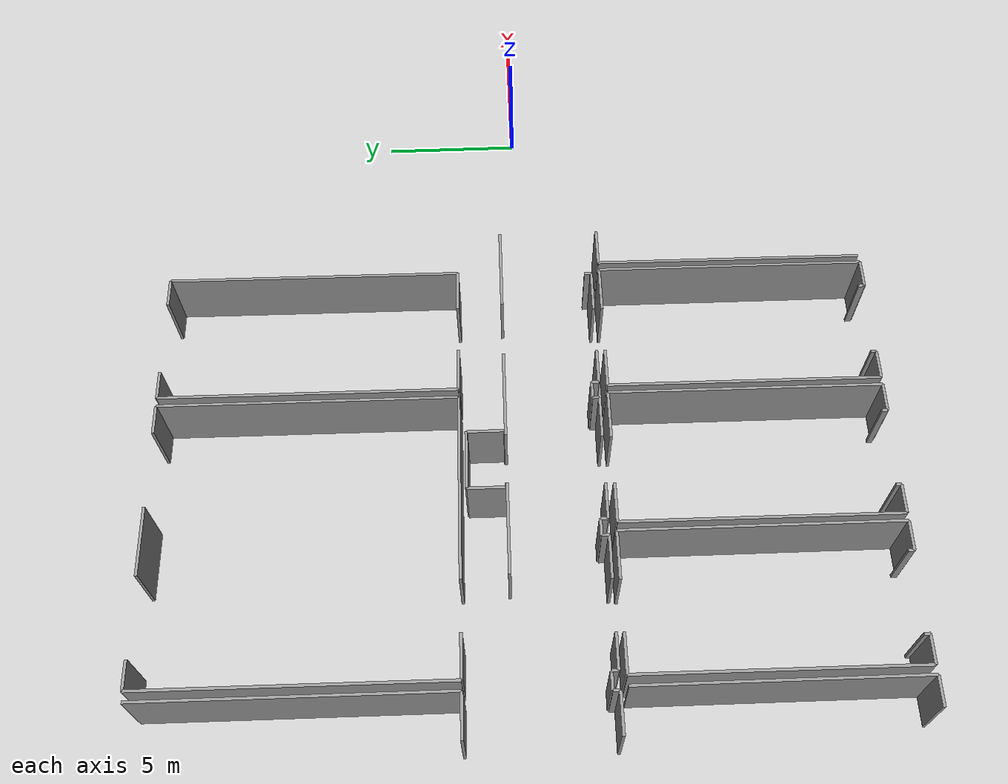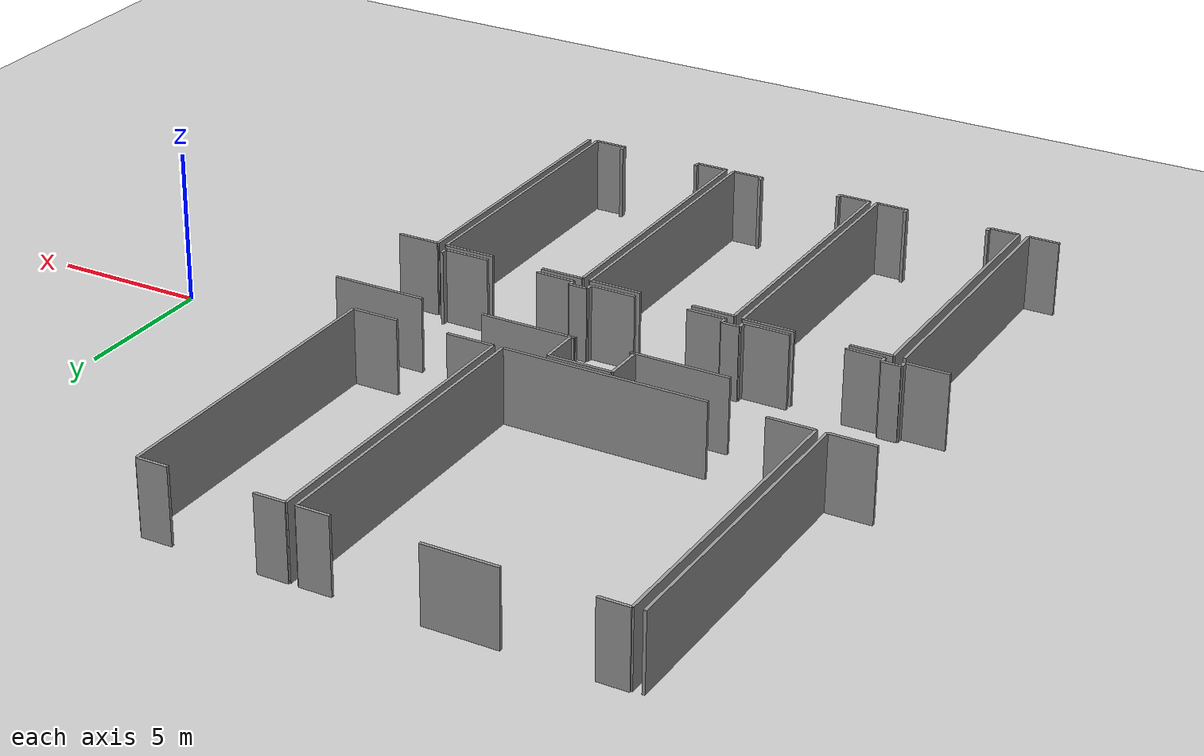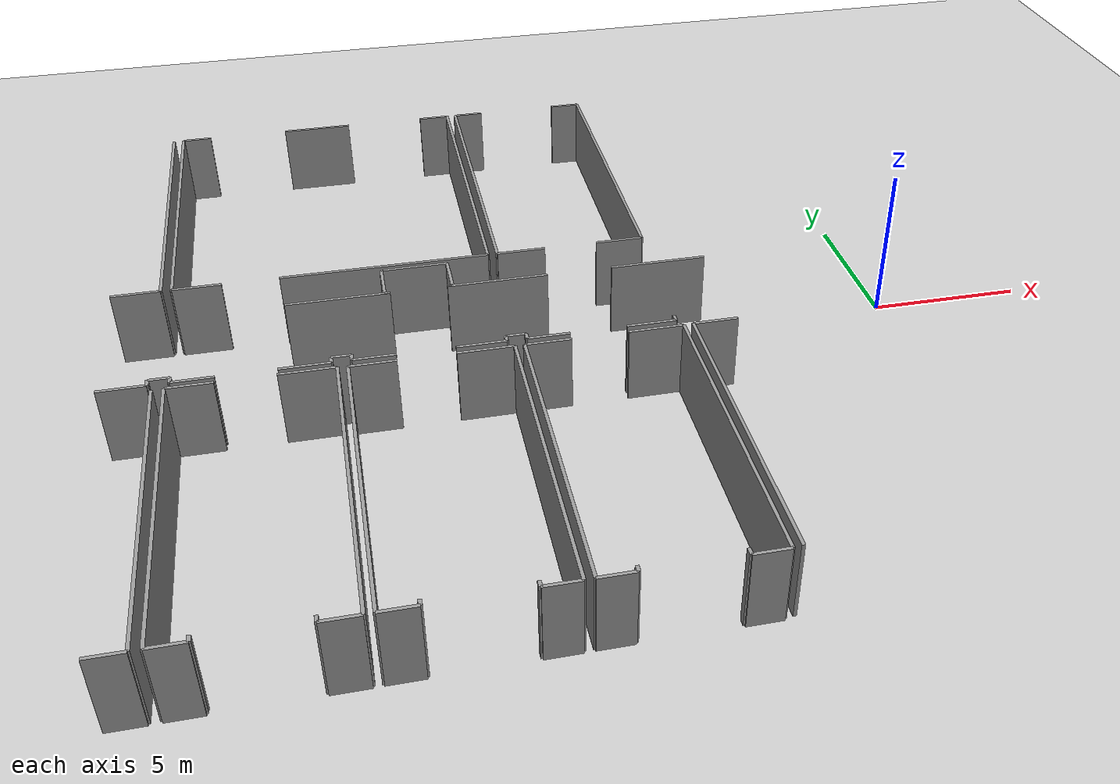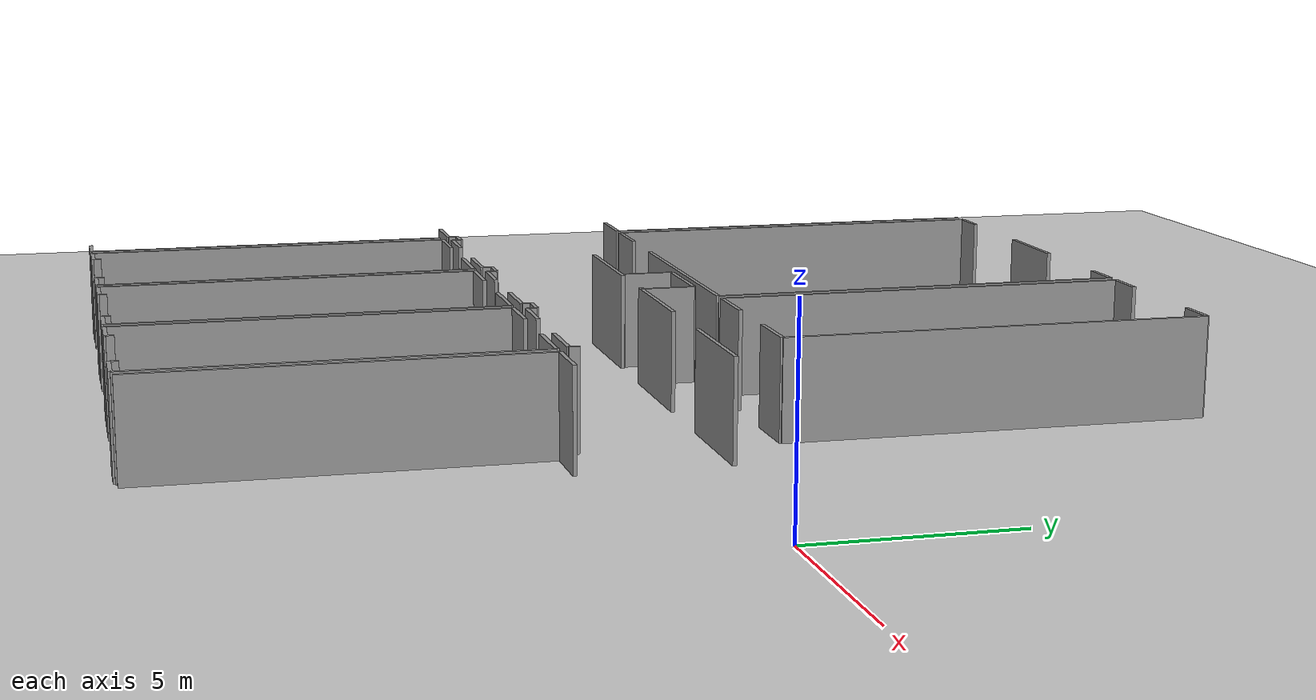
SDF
<sdf version="1.6">
 <world name="default">
  <model name="ground_plane">
   <static>1</static>
   <link name="link">
    <collision name="collision">
     <geometry><plane><normal>0 0 1</normal><size>100 100</size></plane></geometry>
     <surface><friction><ode><mu>100</mu><mu2>50</mu2></ode></friction></surface>
    </collision>
    <visual name="visual">
     <cast_shadows>0</cast_shadows>
     <geometry><plane><normal>0 0 1</normal><size>100 100</size></plane></geometry>
     <material>
      <script><uri>file://media/materials/scripts/gazebo.material</uri><name>Gazebo/Grey</name></script>
     </material>
    </visual>
   </link>
  </model>
  <model name="0510030967_A-40">
   <static>1</static>
   <link name="Wall_0">
    <collision name="Wall_0_Collision">
     <geometry><box><size>1.53389109653 0.1 2.5</size></box></geometry>
     <pose>0.766945548263 0 1.25 0 0 0</pose>
    </collision>
    <visual name="Wall_0_Visual">
     <pose>0.766945548263 0 1.25 0 0 0</pose>
     <geometry><box><size>1.53389109653 0.1 2.5</size></box></geometry>
     <material>
      <script><uri>file://media/materials/scripts/gazebo.material</uri><name>Gazebo/Grey</name></script>
      <ambient>1 1 1 1</ambient>
     </material>
    </visual>
    <pose>15.2854621859 -10.6718549646 0 0 0 3.14159265359</pose>
   </link>
   <link name="Wall_7">
    <collision name="Wall_7_Collision">
     <geometry><box><size>10.6306016114 0.1 2.5</size></box></geometry>
     <pose>5.31530080572 0 1.25 0 0 0</pose>
    </collision>
    <visual name="Wall_7_Visual">
     <pose>5.31530080572 0 1.25 0 0 0</pose>
     <geometry><box><size>10.6306016114 0.1 2.5</size></box></geometry>
     <material>
      <script><uri>file://media/materials/scripts/gazebo.material</uri><name>Gazebo/Grey</name></script>
      <ambient>1 1 1 1</ambient>
     </material>
    </visual>
    <pose>15.2727665139 -0.0412609341475 0 0 0 -1.56960206936</pose>
   </link>
   <link name="Wall_42">
    <collision name="Wall_42_Collision">
     <geometry><box><size>3.27192859954 0.1 2.5</size></box></geometry>
     <pose>1.63596429977 0 1.25 0 0 0</pose>
    </collision>
    <visual name="Wall_42_Visual">
     <pose>1.63596429977 0 1.25 0 0 0</pose>
     <geometry><box><size>3.27192859954 0.1 2.5</size></box></geometry>
     <material>
      <script><uri>file://media/materials/scripts/gazebo.material</uri><name>Gazebo/Grey</name></script>
      <ambient>1 1 1 1</ambient>
     </material>
    </visual>
    <pose>19.0766437721 -12.2899183668 0 0 0 0.0</pose>
   </link>
   <link name="Wall_43">
    <collision name="Wall_43_Collision">
     <geometry><box><size>3.22051112776 0.1 2.5</size></box></geometry>
     <pose>1.61025556388 0 1.25 0 0 0</pose>
    </collision>
    <visual name="Wall_43_Visual">
     <pose>1.61025556388 0 1.25 0 0 0</pose>
     <geometry><box><size>3.22051112776 0.1 2.5</size></box></geometry>
     <material>
      <script><uri>file://media/materials/scripts/gazebo.material</uri><name>Gazebo/Grey</name></script>
      <ambient>1 1 1 1</ambient>
     </material>
    </visual>
    <pose>24.1571978113 -12.2899183668 0 0 0 0.0</pose>
   </link>
   <link name="Wall_44">
    <collision name="Wall_44_Collision">
     <geometry><box><size>3.1103126944 0.1 2.5</size></box></geometry>
     <pose>1.5551563472 0 1.25 0 0 0</pose>
    </collision>
    <visual name="Wall_44_Visual">
     <pose>1.5551563472 0 1.25 0 0 0</pose>
     <geometry><box><size>3.1103126944 0.1 2.5</size></box></geometry>
     <material>
      <script><uri>file://media/materials/scripts/gazebo.material</uri><name>Gazebo/Grey</name></script>
      <ambient>1 1 1 1</ambient>
     </material>
    </visual>
    <pose>29.4832861478 -12.2899183668 0 0 0 0.0</pose>
   </link>
   <link name="Wall_78">
    <collision name="Wall_78_Collision">
     <geometry><box><size>0.255309964833 0.1 2.5</size></box></geometry>
     <pose>0.127654982416 0 1.25 0 0 0</pose>
    </collision>
    <visual name="Wall_78_Visual">
     <pose>0.127654982416 0 1.25 0 0 0</pose>
     <geometry><box><size>0.255309964833 0.1 2.5</size></box></geometry>
     <material>
      <script><uri>file://media/materials/scripts/gazebo.material</uri><name>Gazebo/Grey</name></script>
      <ambient>1 1 1 1</ambient>
     </material>
    </visual>
    <pose>30.7308898397 -15.3966762731 0 0 0 -1.57079632679</pose>
   </link>
   <link name="Wall_79">
    <collision name="Wall_79_Collision">
     <geometry><box><size>1.54011197583 0.1 2.5</size></box></geometry>
     <pose>0.770055987914 0 1.25 0 0 0</pose>
    </collision>
    <visual name="Wall_79_Visual">
     <pose>0.770055987914 0 1.25 0 0 0</pose>
     <geometry><box><size>1.54011197583 0.1 2.5</size></box></geometry>
     <material>
      <script><uri>file://media/materials/scripts/gazebo.material</uri><name>Gazebo/Grey</name></script>
      <ambient>1 1 1 1</ambient>
     </material>
    </visual>
    <pose>30.7308898397 -15.6519862379 0 0 0 3.14159265359</pose>
   </link>
   <link name="Wall_80">
    <collision name="Wall_80_Collision">
     <geometry><box><size>1.30257595186 0.1 2.5</size></box></geometry>
     <pose>0.651287975929 0 1.25 0 0 0</pose>
    </collision>
    <visual name="Wall_80_Visual">
     <pose>0.651287975929 0 1.25 0 0 0</pose>
     <geometry><box><size>1.30257595186 0.1 2.5</size></box></geometry>
     <material>
      <script><uri>file://media/materials/scripts/gazebo.material</uri><name>Gazebo/Grey</name></script>
      <ambient>1 1 1 1</ambient>
     </material>
    </visual>
    <pose>27.4336968527 -15.6519862379 0 0 0 3.14159265359</pose>
   </link>
   <link name="Wall_81">
    <collision name="Wall_81_Collision">
     <geometry><box><size>0.25162821994 0.1 2.5</size></box></geometry>
     <pose>0.12581410997 0 1.25 0 0 0</pose>
    </collision>
    <visual name="Wall_81_Visual">
     <pose>0.12581410997 0 1.25 0 0 0</pose>
     <geometry><box><size>0.25162821994 0.1 2.5</size></box></geometry>
     <material>
      <script><uri>file://media/materials/scripts/gazebo.material</uri><name>Gazebo/Grey</name></script>
      <ambient>1 1 1 1</ambient>
     </material>
    </visual>
    <pose>26.1311209009 -15.6519862379 0 0 0 1.57079632679</pose>
   </link>
   <link name="Wall_82">
    <collision name="Wall_82_Collision">
     <geometry><box><size>0.615867050922 0.1 2.5</size></box></geometry>
     <pose>0.307933525461 0 1.25 0 0 0</pose>
    </collision>
    <visual name="Wall_82_Visual">
     <pose>0.307933525461 0 1.25 0 0 0</pose>
     <geometry><box><size>0.615867050922 0.1 2.5</size></box></geometry>
     <material>
      <script><uri>file://media/materials/scripts/gazebo.material</uri><name>Gazebo/Grey</name></script>
      <ambient>1 1 1 1</ambient>
     </material>
    </visual>
    <pose>26.1311209009 -15.400358018 0 0 0 3.14159265359</pose>
   </link>
   <link name="Wall_83">
    <collision name="Wall_83_Collision">
     <geometry><box><size>0.245915167519 0.1 2.5</size></box></geometry>
     <pose>0.12295758376 0 1.25 0 0 0</pose>
    </collision>
    <visual name="Wall_83_Visual">
     <pose>0.12295758376 0 1.25 0 0 0</pose>
     <geometry><box><size>0.245915167519 0.1 2.5</size></box></geometry>
     <material>
      <script><uri>file://media/materials/scripts/gazebo.material</uri><name>Gazebo/Grey</name></script>
      <ambient>1 1 1 1</ambient>
     </material>
    </visual>
    <pose>25.51525385 -15.400358018 0 0 0 -1.57079632679</pose>
   </link>
   <link name="Wall_84">
    <collision name="Wall_84_Collision">
     <geometry><box><size>1.52589282314 0.1 2.5</size></box></geometry>
     <pose>0.762946411568 0 1.25 0 0 0</pose>
    </collision>
    <visual name="Wall_84_Visual">
     <pose>0.762946411568 0 1.25 0 0 0</pose>
     <geometry><box><size>1.52589282314 0.1 2.5</size></box></geometry>
     <material>
      <script><uri>file://media/materials/scripts/gazebo.material</uri><name>Gazebo/Grey</name></script>
      <ambient>1 1 1 1</ambient>
     </material>
    </visual>
    <pose>25.51525385 -15.6462731855 0 0 0 3.14159265359</pose>
   </link>
   <link name="Wall_85">
    <collision name="Wall_85_Collision">
     <geometry><box><size>1.28632549164 0.1 2.5</size></box></geometry>
     <pose>0.64316274582 0 1.25 0 0 0</pose>
    </collision>
    <visual name="Wall_85_Visual">
     <pose>0.64316274582 0 1.25 0 0 0</pose>
     <geometry><box><size>1.28632549164 0.1 2.5</size></box></geometry>
     <material>
      <script><uri>file://media/materials/scripts/gazebo.material</uri><name>Gazebo/Grey</name></script>
      <ambient>1 1 1 1</ambient>
     </material>
    </visual>
    <pose>22.216283469 -15.6462731855 0 0 0 3.14159265359</pose>
   </link>
   <link name="Wall_86">
    <collision name="Wall_86_Collision">
     <geometry><box><size>0.255056051392 0.1 2.5</size></box></geometry>
     <pose>0.127528025696 0 1.25 0 0 0</pose>
    </collision>
    <visual name="Wall_86_Visual">
     <pose>0.127528025696 0 1.25 0 0 0</pose>
     <geometry><box><size>0.255056051392 0.1 2.5</size></box></geometry>
     <material>
      <script><uri>file://media/materials/scripts/gazebo.material</uri><name>Gazebo/Grey</name></script>
      <ambient>1 1 1 1</ambient>
     </material>
    </visual>
    <pose>20.9299579773 -15.6462731855 0 0 0 1.57079632679</pose>
   </link>
   <link name="Wall_87">
    <collision name="Wall_87_Collision">
     <geometry><box><size>0.595173105488 0.1 2.5</size></box></geometry>
     <pose>0.297586552744 0 1.25 0 0 0</pose>
    </collision>
    <visual name="Wall_87_Visual">
     <pose>0.297586552744 0 1.25 0 0 0</pose>
     <geometry><box><size>0.595173105488 0.1 2.5</size></box></geometry>
     <material>
      <script><uri>file://media/materials/scripts/gazebo.material</uri><name>Gazebo/Grey</name></script>
      <ambient>1 1 1 1</ambient>
     </material>
    </visual>
    <pose>20.9299579773 -15.3912171341 0 0 0 3.14159265359</pose>
   </link>
   <link name="Wall_88">
    <collision name="Wall_88_Collision">
     <geometry><box><size>0.259245623167 0.1 2.5</size></box></geometry>
     <pose>0.129622811584 0 1.25 0 0 0</pose>
    </collision>
    <visual name="Wall_88_Visual">
     <pose>0.129622811584 0 1.25 0 0 0</pose>
     <geometry><box><size>0.259245623167 0.1 2.5</size></box></geometry>
     <material>
      <script><uri>file://media/materials/scripts/gazebo.material</uri><name>Gazebo/Grey</name></script>
      <ambient>1 1 1 1</ambient>
     </material>
    </visual>
    <pose>20.3347848718 -15.3912171341 0 0 0 -1.57079632679</pose>
   </link>
   <link name="Wall_89">
    <collision name="Wall_89_Collision">
     <geometry><box><size>1.52665456346 0.1 2.5</size></box></geometry>
     <pose>0.76332728173 0 1.25 0 0 0</pose>
    </collision>
    <visual name="Wall_89_Visual">
     <pose>0.76332728173 0 1.25 0 0 0</pose>
     <geometry><box><size>1.52665456346 0.1 2.5</size></box></geometry>
     <material>
      <script><uri>file://media/materials/scripts/gazebo.material</uri><name>Gazebo/Grey</name></script>
      <ambient>1 1 1 1</ambient>
     </material>
    </visual>
    <pose>20.3347848718 -15.6504627572 0 0 0 3.14159265359</pose>
   </link>
   <link name="Wall_90">
    <collision name="Wall_90_Collision">
     <geometry><box><size>1.25572892201 0.1 2.5</size></box></geometry>
     <pose>0.627864461005 0 1.25 0 0 0</pose>
    </collision>
    <visual name="Wall_90_Visual">
     <pose>0.627864461005 0 1.25 0 0 0</pose>
     <geometry><box><size>1.25572892201 0.1 2.5</size></box></geometry>
     <material>
      <script><uri>file://media/materials/scripts/gazebo.material</uri><name>Gazebo/Grey</name></script>
      <ambient>1 1 1 1</ambient>
     </material>
    </visual>
    <pose>17.0240075158 -15.6504627572 0 0 0 3.14159265359</pose>
   </link>
   <link name="Wall_91">
    <collision name="Wall_91_Collision">
     <geometry><box><size>0.231949928269 0.1 2.5</size></box></geometry>
     <pose>0.115974964135 0 1.25 0 0 0</pose>
    </collision>
    <visual name="Wall_91_Visual">
     <pose>0.115974964135 0 1.25 0 0 0</pose>
     <geometry><box><size>0.231949928269 0.1 2.5</size></box></geometry>
     <material>
      <script><uri>file://media/materials/scripts/gazebo.material</uri><name>Gazebo/Grey</name></script>
      <ambient>1 1 1 1</ambient>
     </material>
    </visual>
    <pose>15.7682785938 -15.6504627572 0 0 0 1.57079632679</pose>
   </link>
   <link name="Wall_92">
    <collision name="Wall_92_Collision">
     <geometry><box><size>0.624246194472 0.1 2.5</size></box></geometry>
     <pose>0.312123097236 0 1.25 0 0 0</pose>
    </collision>
    <visual name="Wall_92_Visual">
     <pose>0.312123097236 0 1.25 0 0 0</pose>
     <geometry><box><size>0.624246194472 0.1 2.5</size></box></geometry>
     <material>
      <script><uri>file://media/materials/scripts/gazebo.material</uri><name>Gazebo/Grey</name></script>
      <ambient>1 1 1 1</ambient>
     </material>
    </visual>
    <pose>15.7682785938 -15.418512829 0 0 0 3.14159265359</pose>
   </link>
   <link name="Wall_93">
    <collision name="Wall_93_Collision">
     <geometry><box><size>0.246803864563 0.1 2.5</size></box></geometry>
     <pose>0.123401932281 0 1.25 0 0 0</pose>
    </collision>
    <visual name="Wall_93_Visual">
     <pose>0.123401932281 0 1.25 0 0 0</pose>
     <geometry><box><size>0.246803864563 0.1 2.5</size></box></geometry>
     <material>
      <script><uri>file://media/materials/scripts/gazebo.material</uri><name>Gazebo/Grey</name></script>
      <ambient>1 1 1 1</ambient>
     </material>
    </visual>
    <pose>15.1440323994 -15.418512829 0 0 0 -1.57079632679</pose>
   </link>
   <link name="Wall_94">
    <collision name="Wall_94_Collision">
     <geometry><box><size>1.42267700941 0.1 2.5</size></box></geometry>
     <pose>0.711338504704 0 1.25 0 0 0</pose>
    </collision>
    <visual name="Wall_94_Visual">
     <pose>0.711338504704 0 1.25 0 0 0</pose>
     <geometry><box><size>1.42267700941 0.1 2.5</size></box></geometry>
     <material>
      <script><uri>file://media/materials/scripts/gazebo.material</uri><name>Gazebo/Grey</name></script>
      <ambient>1 1 1 1</ambient>
     </material>
    </visual>
    <pose>15.1440323994 -15.6653166935 0 0 0 3.14159265359</pose>
   </link>
   <link name="Wall_115">
    <collision name="Wall_115_Collision">
     <geometry><box><size>1.02669899831 0.1 2.5</size></box></geometry>
     <pose>0.513349499156 0 1.25 0 0 0</pose>
    </collision>
    <visual name="Wall_115_Visual">
     <pose>0.513349499156 0 1.25 0 0 0</pose>
     <geometry><box><size>1.02669899831 0.1 2.5</size></box></geometry>
     <material>
      <script><uri>file://media/materials/scripts/gazebo.material</uri><name>Gazebo/Grey</name></script>
      <ambient>1 1 1 1</ambient>
     </material>
    </visual>
    <pose>15.3010778626 -25.7225741745 0 0 0 3.14159265359</pose>
   </link>
   <link name="Wall_122">
    <collision name="Wall_122_Collision">
     <geometry><box><size>9.78878314326 0.1 2.5</size></box></geometry>
     <pose>4.89439157163 0 1.25 0 0 0</pose>
    </collision>
    <visual name="Wall_122_Visual">
     <pose>4.89439157163 0 1.25 0 0 0</pose>
     <geometry><box><size>9.78878314326 0.1 2.5</size></box></geometry>
     <material>
      <script><uri>file://media/materials/scripts/gazebo.material</uri><name>Gazebo/Grey</name></script>
      <ambient>1 1 1 1</ambient>
     </material>
    </visual>
    <pose>15.2734012975 -15.9338301573 0 0 0 -1.56796894759</pose>
   </link>
   <link name="Wall_123">
    <collision name="Wall_123_Collision">
     <geometry><box><size>1.05983470235 0.1 2.5</size></box></geometry>
     <pose>0.529917351175 0 1.25 0 0 0</pose>
    </collision>
    <visual name="Wall_123_Visual">
     <pose>0.529917351175 0 1.25 0 0 0</pose>
     <geometry><box><size>1.05983470235 0.1 2.5</size></box></geometry>
     <material>
      <script><uri>file://media/materials/scripts/gazebo.material</uri><name>Gazebo/Grey</name></script>
      <ambient>1 1 1 1</ambient>
     </material>
    </visual>
    <pose>20.5229347316 -25.7225741745 0 0 0 3.14159265359</pose>
   </link>
   <link name="Wall_124">
    <collision name="Wall_124_Collision">
     <geometry><box><size>0.20985945891 0.1 2.5</size></box></geometry>
     <pose>0.104929729455 0 1.25 0 0 0</pose>
    </collision>
    <visual name="Wall_124_Visual">
     <pose>0.104929729455 0 1.25 0 0 0</pose>
     <geometry><box><size>0.20985945891 0.1 2.5</size></box></geometry>
     <material>
      <script><uri>file://media/materials/scripts/gazebo.material</uri><name>Gazebo/Grey</name></script>
      <ambient>1 1 1 1</ambient>
     </material>
    </visual>
    <pose>19.4631000292 -25.7225741745 0 0 0 1.57079632679</pose>
   </link>
   <link name="Wall_125">
    <collision name="Wall_125_Collision">
     <geometry><box><size>0.198814224231 0.1 2.5</size></box></geometry>
     <pose>0.0994071121155 0 1.25 0 0 0</pose>
    </collision>
    <visual name="Wall_125_Visual">
     <pose>0.0994071121155 0 1.25 0 0 0</pose>
     <geometry><box><size>0.198814224231 0.1 2.5</size></box></geometry>
     <material>
      <script><uri>file://media/materials/scripts/gazebo.material</uri><name>Gazebo/Grey</name></script>
      <ambient>1 1 1 1</ambient>
     </material>
    </visual>
    <pose>16.6258712405 -25.5127147156 0 0 0 -1.57079632679</pose>
   </link>
   <link name="Wall_126">
    <collision name="Wall_126_Collision">
     <geometry><box><size>1.00460852895 0.1 2.5</size></box></geometry>
     <pose>0.502304264476 0 1.25 0 0 0</pose>
    </collision>
    <visual name="Wall_126_Visual">
     <pose>0.502304264476 0 1.25 0 0 0</pose>
     <geometry><box><size>1.00460852895 0.1 2.5</size></box></geometry>
     <material>
      <script><uri>file://media/materials/scripts/gazebo.material</uri><name>Gazebo/Grey</name></script>
      <ambient>1 1 1 1</ambient>
     </material>
    </visual>
    <pose>16.6258712405 -25.7115289398 0 0 0 3.14159265359</pose>
   </link>
   <link name="Wall_127">
    <collision name="Wall_127_Collision">
     <geometry><box><size>9.80270925641 0.1 2.5</size></box></geometry>
     <pose>4.90135462821 0 1.25 0 0 0</pose>
    </collision>
    <visual name="Wall_127_Visual">
     <pose>4.90135462821 0 1.25 0 0 0</pose>
     <geometry><box><size>9.80270925641 0.1 2.5</size></box></geometry>
     <material>
      <script><uri>file://media/materials/scripts/gazebo.material</uri><name>Gazebo/Grey</name></script>
      <ambient>1 1 1 1</ambient>
     </material>
    </visual>
    <pose>15.6212627115 -25.7115289398 0 0 0 1.57079632679</pose>
   </link>
   <link name="Wall_128">
    <collision name="Wall_128_Collision">
     <geometry><box><size>1.38611347392 0.1 2.5</size></box></geometry>
     <pose>0.693056736958 0 1.25 0 0 0</pose>
    </collision>
    <visual name="Wall_128_Visual">
     <pose>0.693056736958 0 1.25 0 0 0</pose>
     <geometry><box><size>1.38611347392 0.1 2.5</size></box></geometry>
     <material>
      <script><uri>file://media/materials/scripts/gazebo.material</uri><name>Gazebo/Grey</name></script>
      <ambient>1 1 1 1</ambient>
     </material>
    </visual>
    <pose>15.6212627115 -15.9088196834 0 0 0 0.0</pose>
   </link>
   <link name="Wall_129">
    <collision name="Wall_129_Collision">
     <geometry><box><size>1.7125192022 0.1 2.5</size></box></geometry>
     <pose>0.856259601102 0 1.25 0 0 0</pose>
    </collision>
    <visual name="Wall_129_Visual">
     <pose>0.856259601102 0 1.25 0 0 0</pose>
     <geometry><box><size>1.7125192022 0.1 2.5</size></box></geometry>
     <material>
      <script><uri>file://media/materials/scripts/gazebo.material</uri><name>Gazebo/Grey</name></script>
      <ambient>1 1 1 1</ambient>
     </material>
    </visual>
    <pose>18.7805807 -15.9088196834 0 0 0 0.0</pose>
   </link>
   <link name="Wall_130">
    <collision name="Wall_130_Collision">
     <geometry><box><size>9.81379984147 0.1 2.5</size></box></geometry>
     <pose>4.90689992074 0 1.25 0 0 0</pose>
    </collision>
    <visual name="Wall_130_Visual">
     <pose>4.90689992074 0 1.25 0 0 0</pose>
     <geometry><box><size>9.81379984147 0.1 2.5</size></box></geometry>
     <material>
      <script><uri>file://media/materials/scripts/gazebo.material</uri><name>Gazebo/Grey</name></script>
      <ambient>1 1 1 1</ambient>
     </material>
    </visual>
    <pose>20.4930999022 -15.9088196834 0 0 0 -1.56775623267</pose>
   </link>
   <link name="Wall_131">
    <collision name="Wall_131_Collision">
     <geometry><box><size>1.04066423756 0.1 2.5</size></box></geometry>
     <pose>0.520332118781 0 1.25 0 0 0</pose>
    </collision>
    <visual name="Wall_131_Visual">
     <pose>0.520332118781 0 1.25 0 0 0</pose>
     <geometry><box><size>1.04066423756 0.1 2.5</size></box></geometry>
     <material>
      <script><uri>file://media/materials/scripts/gazebo.material</uri><name>Gazebo/Grey</name></script>
      <ambient>1 1 1 1</ambient>
     </material>
    </visual>
    <pose>25.7106402427 -25.7205428669 0 0 0 3.14159265359</pose>
   </link>
   <link name="Wall_132">
    <collision name="Wall_132_Collision">
     <geometry><box><size>0.200083791436 0.1 2.5</size></box></geometry>
     <pose>0.100041895718 0 1.25 0 0 0</pose>
    </collision>
    <visual name="Wall_132_Visual">
     <pose>0.100041895718 0 1.25 0 0 0</pose>
     <geometry><box><size>0.200083791436 0.1 2.5</size></box></geometry>
     <material>
      <script><uri>file://media/materials/scripts/gazebo.material</uri><name>Gazebo/Grey</name></script>
      <ambient>1 1 1 1</ambient>
     </material>
    </visual>
    <pose>24.6699760052 -25.7205428669 0 0 0 1.57079632679</pose>
   </link>
   <link name="Wall_133">
    <collision name="Wall_133_Collision">
     <geometry><box><size>0.192085518047 0.1 2.5</size></box></geometry>
     <pose>0.0960427590234 0 1.25 0 0 0</pose>
    </collision>
    <visual name="Wall_133_Visual">
     <pose>0.0960427590234 0 1.25 0 0 0</pose>
     <geometry><box><size>0.192085518047 0.1 2.5</size></box></geometry>
     <material>
      <script><uri>file://media/materials/scripts/gazebo.material</uri><name>Gazebo/Grey</name></script>
      <ambient>1 1 1 1</ambient>
     </material>
    </visual>
    <pose>21.8378254853 -25.5204590755 0 0 0 -1.57079632679</pose>
   </link>
   <link name="Wall_134">
    <collision name="Wall_134_Collision">
     <geometry><box><size>1.04282250181 0.1 2.5</size></box></geometry>
     <pose>0.521411250905 0 1.25 0 0 0</pose>
    </collision>
    <visual name="Wall_134_Visual">
     <pose>0.521411250905 0 1.25 0 0 0</pose>
     <geometry><box><size>1.04282250181 0.1 2.5</size></box></geometry>
     <material>
      <script><uri>file://media/materials/scripts/gazebo.material</uri><name>Gazebo/Grey</name></script>
      <ambient>1 1 1 1</ambient>
     </material>
    </visual>
    <pose>21.8378254853 -25.7125445935 0 0 0 3.14159265359</pose>
   </link>
   <link name="Wall_135">
    <collision name="Wall_135_Collision">
     <geometry><box><size>9.76195614915 0.1 2.5</size></box></geometry>
     <pose>4.88097807457 0 1.25 0 0 0</pose>
    </collision>
    <visual name="Wall_135_Visual">
     <pose>4.88097807457 0 1.25 0 0 0</pose>
     <geometry><box><size>9.76195614915 0.1 2.5</size></box></geometry>
     <material>
      <script><uri>file://media/materials/scripts/gazebo.material</uri><name>Gazebo/Grey</name></script>
      <ambient>1 1 1 1</ambient>
     </material>
    </visual>
    <pose>20.7950029835 -25.7125445935 0 0 0 1.57079632679</pose>
   </link>
   <link name="Wall_136">
    <collision name="Wall_136_Collision">
     <geometry><box><size>1.41797961075 0.1 2.5</size></box></geometry>
     <pose>0.708989805375 0 1.25 0 0 0</pose>
    </collision>
    <visual name="Wall_136_Visual">
     <pose>0.708989805375 0 1.25 0 0 0</pose>
     <geometry><box><size>1.41797961075 0.1 2.5</size></box></geometry>
     <material>
      <script><uri>file://media/materials/scripts/gazebo.material</uri><name>Gazebo/Grey</name></script>
      <ambient>1 1 1 1</ambient>
     </material>
    </visual>
    <pose>20.7950029835 -15.9505884444 0 0 0 0.0</pose>
   </link>
   <link name="Wall_137">
    <collision name="Wall_137_Collision">
     <geometry><box><size>1.73994185382 0.1 2.5</size></box></geometry>
     <pose>0.869970926911 0 1.25 0 0 0</pose>
    </collision>
    <visual name="Wall_137_Visual">
     <pose>0.869970926911 0 1.25 0 0 0</pose>
     <geometry><box><size>1.73994185382 0.1 2.5</size></box></geometry>
     <material>
      <script><uri>file://media/materials/scripts/gazebo.material</uri><name>Gazebo/Grey</name></script>
      <ambient>1 1 1 1</ambient>
     </material>
    </visual>
    <pose>23.9673975142 -15.9505884444 0 0 0 0.0</pose>
   </link>
   <link name="Wall_138">
    <collision name="Wall_138_Collision">
     <geometry><box><size>9.76995498015 0.1 2.5</size></box></geometry>
     <pose>4.88497749008 0 1.25 0 0 0</pose>
    </collision>
    <visual name="Wall_138_Visual">
     <pose>4.88497749008 0 1.25 0 0 0</pose>
     <geometry><box><size>9.76995498015 0.1 2.5</size></box></geometry>
     <material>
      <script><uri>file://media/materials/scripts/gazebo.material</uri><name>Gazebo/Grey</name></script>
      <ambient>1 1 1 1</ambient>
     </material>
    </visual>
    <pose>25.707339368 -15.9505884444 0 0 0 -1.57045846702</pose>
   </link>
   <link name="Wall_139">
    <collision name="Wall_139_Collision">
     <geometry><box><size>1.05374077977 0.1 2.5</size></box></geometry>
     <pose>0.526870389884 0 1.25 0 0 0</pose>
    </collision>
    <visual name="Wall_139_Visual">
     <pose>0.526870389884 0 1.25 0 0 0</pose>
     <geometry><box><size>1.05374077977 0.1 2.5</size></box></geometry>
     <material>
      <script><uri>file://media/materials/scripts/gazebo.material</uri><name>Gazebo/Grey</name></script>
      <ambient>1 1 1 1</ambient>
     </material>
    </visual>
    <pose>30.9112953394 -25.7445376871 0 0 0 3.14159265359</pose>
   </link>
   <link name="Wall_140">
    <collision name="Wall_140_Collision">
     <geometry><box><size>0.221793390633 0.1 2.5</size></box></geometry>
     <pose>0.110896695317 0 1.25 0 0 0</pose>
    </collision>
    <visual name="Wall_140_Visual">
     <pose>0.110896695317 0 1.25 0 0 0</pose>
     <geometry><box><size>0.221793390633 0.1 2.5</size></box></geometry>
     <material>
      <script><uri>file://media/materials/scripts/gazebo.material</uri><name>Gazebo/Grey</name></script>
      <ambient>1 1 1 1</ambient>
     </material>
    </visual>
    <pose>29.8575545597 -25.7445376871 0 0 0 1.57079632679</pose>
   </link>
   <link name="Wall_141">
    <collision name="Wall_141_Collision">
     <geometry><box><size>0.196021176381 0.1 2.5</size></box></geometry>
     <pose>0.0980105881905 0 1.25 0 0 0</pose>
    </collision>
    <visual name="Wall_141_Visual">
     <pose>0.0980105881905 0 1.25 0 0 0</pose>
     <geometry><box><size>0.196021176381 0.1 2.5</size></box></geometry>
     <material>
      <script><uri>file://media/materials/scripts/gazebo.material</uri><name>Gazebo/Grey</name></script>
      <ambient>1 1 1 1</ambient>
     </material>
    </visual>
    <pose>27.0485101629 -25.5227442965 0 0 0 -1.57079632679</pose>
   </link>
   <link name="Wall_142">
    <collision name="Wall_142_Collision">
     <geometry><box><size>1.05259816928 0.1 2.5</size></box></geometry>
     <pose>0.526299084642 0 1.25 0 0 0</pose>
    </collision>
    <visual name="Wall_142_Visual">
     <pose>0.526299084642 0 1.25 0 0 0</pose>
     <geometry><box><size>1.05259816928 0.1 2.5</size></box></geometry>
     <material>
      <script><uri>file://media/materials/scripts/gazebo.material</uri><name>Gazebo/Grey</name></script>
      <ambient>1 1 1 1</ambient>
     </material>
    </visual>
    <pose>27.0485101629 -25.7187654729 0 0 0 3.14159265359</pose>
   </link>
   <link name="Wall_143">
    <collision name="Wall_143_Collision">
     <geometry><box><size>9.76347962979 0.1 2.5</size></box></geometry>
     <pose>4.8817398149 0 1.25 0 0 0</pose>
    </collision>
    <visual name="Wall_143_Visual">
     <pose>4.8817398149 0 1.25 0 0 0</pose>
     <geometry><box><size>9.76347962979 0.1 2.5</size></box></geometry>
     <material>
      <script><uri>file://media/materials/scripts/gazebo.material</uri><name>Gazebo/Grey</name></script>
      <ambient>1 1 1 1</ambient>
     </material>
    </visual>
    <pose>25.9959119936 -25.7187654729 0 0 0 1.57079632679</pose>
   </link>
   <link name="Wall_144">
    <collision name="Wall_144_Collision">
     <geometry><box><size>1.42420049005 0.1 2.5</size></box></geometry>
     <pose>0.712100245026 0 1.25 0 0 0</pose>
    </collision>
    <visual name="Wall_144_Visual">
     <pose>0.712100245026 0 1.25 0 0 0</pose>
     <geometry><box><size>1.42420049005 0.1 2.5</size></box></geometry>
     <material>
      <script><uri>file://media/materials/scripts/gazebo.material</uri><name>Gazebo/Grey</name></script>
      <ambient>1 1 1 1</ambient>
     </material>
    </visual>
    <pose>25.9959119936 -15.9552858431 0 0 0 0.0</pose>
   </link>
   <link name="Wall_145">
    <collision name="Wall_145_Collision">
     <geometry><box><size>1.70858354387 0.1 2.5</size></box></geometry>
     <pose>0.854291771935 0 1.25 0 0 0</pose>
    </collision>
    <visual name="Wall_145_Visual">
     <pose>0.854291771935 0 1.25 0 0 0</pose>
     <geometry><box><size>1.70858354387 0.1 2.5</size></box></geometry>
     <material>
      <script><uri>file://media/materials/scripts/gazebo.material</uri><name>Gazebo/Grey</name></script>
      <ambient>1 1 1 1</ambient>
     </material>
    </visual>
    <pose>29.1812561098 -15.9552858431 0 0 0 0.0</pose>
   </link>
   <link name="Wall_146">
    <collision name="Wall_146_Collision">
     <geometry><box><size>9.78927535687 0.1 2.5</size></box></geometry>
     <pose>4.89463767843 0 1.25 0 0 0</pose>
    </collision>
    <visual name="Wall_146_Visual">
     <pose>4.89463767843 0 1.25 0 0 0</pose>
     <geometry><box><size>9.78927535687 0.1 2.5</size></box></geometry>
     <material>
      <script><uri>file://media/materials/scripts/gazebo.material</uri><name>Gazebo/Grey</name></script>
      <ambient>1 1 1 1</ambient>
     </material>
    </visual>
    <pose>30.8898396537 -15.9552858431 0 0 0 -1.5686045708</pose>
   </link>
   <link name="Wall_151">
    <collision name="Wall_151_Collision">
     <geometry><box><size>9.76614572092 0.1 2.5</size></box></geometry>
     <pose>4.88307286046 0 1.25 0 0 0</pose>
    </collision>
    <visual name="Wall_151_Visual">
     <pose>4.88307286046 0 1.25 0 0 0</pose>
     <geometry><box><size>9.76614572092 0.1 2.5</size></box></geometry>
     <material>
      <script><uri>file://media/materials/scripts/gazebo.material</uri><name>Gazebo/Grey</name></script>
      <ambient>1 1 1 1</ambient>
     </material>
    </visual>
    <pose>31.1960592634 -25.7070854546 0 0 0 1.57079632679</pose>
   </link>
   <link name="Wall_152">
    <collision name="Wall_152_Collision">
     <geometry><box><size>1.41683700027 0.1 2.5</size></box></geometry>
     <pose>0.708418500133 0 1.25 0 0 0</pose>
    </collision>
    <visual name="Wall_152_Visual">
     <pose>0.708418500133 0 1.25 0 0 0</pose>
     <geometry><box><size>1.41683700027 0.1 2.5</size></box></geometry>
     <material>
      <script><uri>file://media/materials/scripts/gazebo.material</uri><name>Gazebo/Grey</name></script>
      <ambient>1 1 1 1</ambient>
     </material>
    </visual>
    <pose>31.1960592634 -15.9409397336 0 0 0 0.0</pose>
   </link>
   <link name="Wall_196">
    <collision name="Wall_196_Collision">
     <geometry><box><size>0.138001955133 0.1 2.5</size></box></geometry>
     <pose>0.0690009775667 0 1.25 0 0 0</pose>
    </collision>
    <visual name="Wall_196_Visual">
     <pose>0.0690009775667 0 1.25 0 0 0</pose>
     <geometry><box><size>0.138001955133 0.1 2.5</size></box></geometry>
     <material>
      <script><uri>file://media/materials/scripts/gazebo.material</uri><name>Gazebo/Grey</name></script>
      <ambient>1 1 1 1</ambient>
     </material>
    </visual>
    <pose>24.3191945866 -12.2682087676 0 0 0 3.14159265359</pose>
   </link>
   <link name="Wall_197">
    <collision name="Wall_197_Collision">
     <geometry><box><size>0.157426333363 0.1 2.5</size></box></geometry>
     <pose>0.0787131666815 0 1.25 0 0 0</pose>
    </collision>
    <visual name="Wall_197_Visual">
     <pose>0.0787131666815 0 1.25 0 0 0</pose>
     <geometry><box><size>0.157426333363 0.1 2.5</size></box></geometry>
     <material>
      <script><uri>file://media/materials/scripts/gazebo.material</uri><name>Gazebo/Grey</name></script>
      <ambient>1 1 1 1</ambient>
     </material>
    </visual>
    <pose>22.3370193101 -12.2682087676 0 0 0 3.14159265359</pose>
   </link>
   <link name="Wall_198">
    <collision name="Wall_198_Collision">
     <geometry><box><size>1.35297776988 0.1 2.5</size></box></geometry>
     <pose>0.676488884939 0 1.25 0 0 0</pose>
    </collision>
    <visual name="Wall_198_Visual">
     <pose>0.676488884939 0 1.25 0 0 0</pose>
     <geometry><box><size>1.35297776988 0.1 2.5</size></box></geometry>
     <material>
      <script><uri>file://media/materials/scripts/gazebo.material</uri><name>Gazebo/Grey</name></script>
      <ambient>1 1 1 1</ambient>
     </material>
    </visual>
    <pose>22.1795929768 -12.2682087676 0 0 0 1.57079632679</pose>
   </link>
   <link name="Wall_199">
    <collision name="Wall_199_Collision">
     <geometry><box><size>2.13338073051 0.1 2.5</size></box></geometry>
     <pose>1.06669036525 0 1.25 0 0 0</pose>
    </collision>
    <visual name="Wall_199_Visual">
     <pose>1.06669036525 0 1.25 0 0 0</pose>
     <geometry><box><size>2.13338073051 0.1 2.5</size></box></geometry>
     <material>
      <script><uri>file://media/materials/scripts/gazebo.material</uri><name>Gazebo/Grey</name></script>
      <ambient>1 1 1 1</ambient>
     </material>
    </visual>
    <pose>22.1795929768 -10.9152309978 0 0 0 0.0</pose>
   </link>
   <link name="Wall_200">
    <collision name="Wall_200_Collision">
     <geometry><box><size>1.35299207135 0.1 2.5</size></box></geometry>
     <pose>0.676496035673 0 1.25 0 0 0</pose>
    </collision>
    <visual name="Wall_200_Visual">
     <pose>0.676496035673 0 1.25 0 0 0</pose>
     <geometry><box><size>1.35299207135 0.1 2.5</size></box></geometry>
     <material>
      <script><uri>file://media/materials/scripts/gazebo.material</uri><name>Gazebo/Grey</name></script>
      <ambient>1 1 1 1</ambient>
     </material>
    </visual>
    <pose>24.3129737073 -10.9152309978 0 0 0 -1.56619844233</pose>
   </link>
   <link name="Wall_206">
    <collision name="Wall_206_Collision">
     <geometry><box><size>6.72870618406 0.1 2.5</size></box></geometry>
     <pose>3.36435309203 0 1.25 0 0 0</pose>
    </collision>
    <visual name="Wall_206_Visual">
     <pose>3.36435309203 0 1.25 0 0 0</pose>
     <geometry><box><size>6.72870618406 0.1 2.5</size></box></geometry>
     <material>
      <script><uri>file://media/materials/scripts/gazebo.material</uri><name>Gazebo/Grey</name></script>
      <ambient>1 1 1 1</ambient>
     </material>
    </visual>
    <pose>25.6922315183 -10.6693158302 0 0 0 3.14159265359</pose>
   </link>
   <link name="Wall_207">
    <collision name="Wall_207_Collision">
     <geometry><box><size>1.53592240405 0.1 2.5</size></box></geometry>
     <pose>0.767961202026 0 1.25 0 0 0</pose>
    </collision>
    <visual name="Wall_207_Visual">
     <pose>0.767961202026 0 1.25 0 0 0</pose>
     <geometry><box><size>1.53592240405 0.1 2.5</size></box></geometry>
     <material>
      <script><uri>file://media/materials/scripts/gazebo.material</uri><name>Gazebo/Grey</name></script>
      <ambient>1 1 1 1</ambient>
     </material>
    </visual>
    <pose>17.1571851156 -10.6693158302 0 0 0 3.14159265359</pose>
   </link>
   <link name="Wall_208">
    <collision name="Wall_208_Collision">
     <geometry><box><size>10.6459557937 0.1 2.5</size></box></geometry>
     <pose>5.32297789683 0 1.25 0 0 0</pose>
    </collision>
    <visual name="Wall_208_Visual">
     <pose>5.32297789683 0 1.25 0 0 0</pose>
     <geometry><box><size>10.6459557937 0.1 2.5</size></box></geometry>
     <material>
      <script><uri>file://media/materials/scripts/gazebo.material</uri><name>Gazebo/Grey</name></script>
      <ambient>1 1 1 1</ambient>
     </material>
    </visual>
    <pose>15.6212627115 -10.6693158302 0 0 0 1.57079632679</pose>
   </link>
   <link name="Wall_209">
    <collision name="Wall_209_Collision">
     <geometry><box><size>1.01044853809 0.1 2.5</size></box></geometry>
     <pose>0.505224269047 0 1.25 0 0 0</pose>
    </collision>
    <visual name="Wall_209_Visual">
     <pose>0.505224269047 0 1.25 0 0 0</pose>
     <geometry><box><size>1.01044853809 0.1 2.5</size></box></geometry>
     <material>
      <script><uri>file://media/materials/scripts/gazebo.material</uri><name>Gazebo/Grey</name></script>
      <ambient>1 1 1 1</ambient>
     </material>
    </visual>
    <pose>15.6212627115 -0.0233600365635 0 0 0 0.0</pose>
   </link>
   <link name="Wall_210">
    <collision name="Wall_210_Collision">
     <geometry><box><size>2.41750987089 0.1 2.5</size></box></geometry>
     <pose>1.20875493544 0 1.25 0 0 0</pose>
    </collision>
    <visual name="Wall_210_Visual">
     <pose>1.20875493544 0 1.25 0 0 0</pose>
     <geometry><box><size>2.41750987089 0.1 2.5</size></box></geometry>
     <material>
      <script><uri>file://media/materials/scripts/gazebo.material</uri><name>Gazebo/Grey</name></script>
      <ambient>1 1 1 1</ambient>
     </material>
    </visual>
    <pose>19.4198077875 -0.0233600365635 0 0 0 0.0</pose>
   </link>
   <link name="Wall_211">
    <collision name="Wall_211_Collision">
     <geometry><box><size>1.06897558622 0.1 2.5</size></box></geometry>
     <pose>0.534487793111 0 1.25 0 0 0</pose>
    </collision>
    <visual name="Wall_211_Visual">
     <pose>0.534487793111 0 1.25 0 0 0</pose>
     <geometry><box><size>1.06897558622 0.1 2.5</size></box></geometry>
     <material>
      <script><uri>file://media/materials/scripts/gazebo.material</uri><name>Gazebo/Grey</name></script>
      <ambient>1 1 1 1</ambient>
     </material>
    </visual>
    <pose>24.613734178 -0.0233600365635 0 0 0 0.0</pose>
   </link>
   <link name="Wall_212">
    <collision name="Wall_212_Collision">
     <geometry><box><size>10.6459600518 0.1 2.5</size></box></geometry>
     <pose>5.3229800259 0 1.25 0 0 0</pose>
    </collision>
    <visual name="Wall_212_Visual">
     <pose>5.3229800259 0 1.25 0 0 0</pose>
     <geometry><box><size>10.6459600518 0.1 2.5</size></box></geometry>
     <material>
      <script><uri>file://media/materials/scripts/gazebo.material</uri><name>Gazebo/Grey</name></script>
      <ambient>1 1 1 1</ambient>
     </material>
    </visual>
    <pose>25.6827097642 -0.0233600365635 0 0 0 -1.56990192598</pose>
   </link>
   <link name="Wall_213">
    <collision name="Wall_213_Collision">
     <geometry><box><size>1.5542041718 0.1 2.5</size></box></geometry>
     <pose>0.777102085899 0 1.25 0 0 0</pose>
    </collision>
    <visual name="Wall_213_Visual">
     <pose>0.777102085899 0 1.25 0 0 0</pose>
     <geometry><box><size>1.5542041718 0.1 2.5</size></box></geometry>
     <material>
      <script><uri>file://media/materials/scripts/gazebo.material</uri><name>Gazebo/Grey</name></script>
      <ambient>1 1 1 1</ambient>
     </material>
    </visual>
    <pose>30.8950448792 -10.6655071286 0 0 0 3.14159265359</pose>
   </link>
   <link name="Wall_214">
    <collision name="Wall_214_Collision">
     <geometry><box><size>1.58975205352 0.1 2.5</size></box></geometry>
     <pose>0.794876026762 0 1.25 0 0 0</pose>
    </collision>
    <visual name="Wall_214_Visual">
     <pose>0.794876026762 0 1.25 0 0 0</pose>
     <geometry><box><size>1.58975205352 0.1 2.5</size></box></geometry>
     <material>
      <script><uri>file://media/materials/scripts/gazebo.material</uri><name>Gazebo/Grey</name></script>
      <ambient>1 1 1 1</ambient>
     </material>
    </visual>
    <pose>27.5929005802 -10.6655071286 0 0 0 3.14159265359</pose>
   </link>
   <link name="Wall_215">
    <collision name="Wall_215_Collision">
     <geometry><box><size>10.6482410146 0.1 2.5</size></box></geometry>
     <pose>5.32412050732 0 1.25 0 0 0</pose>
    </collision>
    <visual name="Wall_215_Visual">
     <pose>5.32412050732 0 1.25 0 0 0</pose>
     <geometry><box><size>10.6482410146 0.1 2.5</size></box></geometry>
     <material>
      <script><uri>file://media/materials/scripts/gazebo.material</uri><name>Gazebo/Grey</name></script>
      <ambient>1 1 1 1</ambient>
     </material>
    </visual>
    <pose>26.0031485267 -10.6655071286 0 0 0 1.57079632679</pose>
   </link>
   <link name="Wall_216">
    <collision name="Wall_216_Collision">
     <geometry><box><size>1.02885726256 0.1 2.5</size></box></geometry>
     <pose>0.51442863128 0 1.25 0 0 0</pose>
    </collision>
    <visual name="Wall_216_Visual">
     <pose>0.51442863128 0 1.25 0 0 0</pose>
     <geometry><box><size>1.02885726256 0.1 2.5</size></box></geometry>
     <material>
      <script><uri>file://media/materials/scripts/gazebo.material</uri><name>Gazebo/Grey</name></script>
      <ambient>1 1 1 1</ambient>
     </material>
    </visual>
    <pose>26.0031485267 -0.0172661139817 0 0 0 0.0</pose>
   </link>
   <link name="Wall_217">
    <collision name="Wall_217_Collision">
     <geometry><box><size>1.04142597788 0.1 2.5</size></box></geometry>
     <pose>0.520712988942 0 1.25 0 0 0</pose>
    </collision>
    <visual name="Wall_217_Visual">
     <pose>0.520712988942 0 1.25 0 0 0</pose>
     <geometry><box><size>1.04142597788 0.1 2.5</size></box></geometry>
     <material>
      <script><uri>file://media/materials/scripts/gazebo.material</uri><name>Gazebo/Grey</name></script>
      <ambient>1 1 1 1</ambient>
     </material>
    </visual>
    <pose>29.8598397806 -0.0172661139817 0 0 0 0.0</pose>
   </link>
   <link name="Wall_218">
    <collision name="Wall_218_Collision">
     <geometry><box><size>10.6482428318 0.1 2.5</size></box></geometry>
     <pose>5.3241214159 0 1.25 0 0 0</pose>
    </collision>
    <visual name="Wall_218_Visual">
     <pose>5.3241214159 0 1.25 0 0 0</pose>
     <geometry><box><size>10.6482428318 0.1 2.5</size></box></geometry>
     <material>
      <script><uri>file://media/materials/scripts/gazebo.material</uri><name>Gazebo/Grey</name></script>
      <ambient>1 1 1 1</ambient>
     </material>
    </visual>
    <pose>30.9012657585 -0.0172661139817 0 0 0 -1.57138054334</pose>
   </link>
   <pose>-38.7 12.8945376871 0 0 0 0</pose>
  </model>
 </world>
</sdf>
